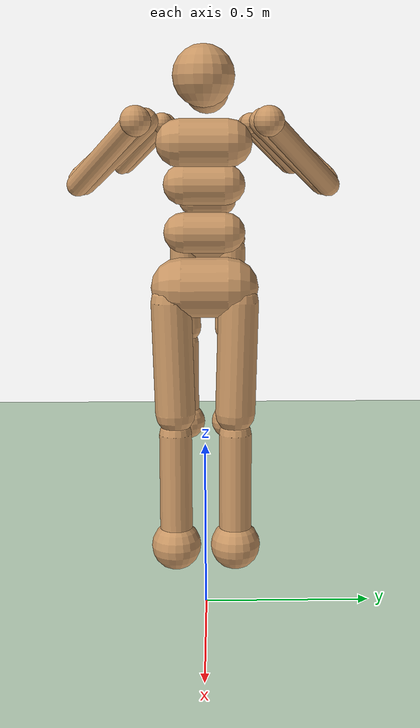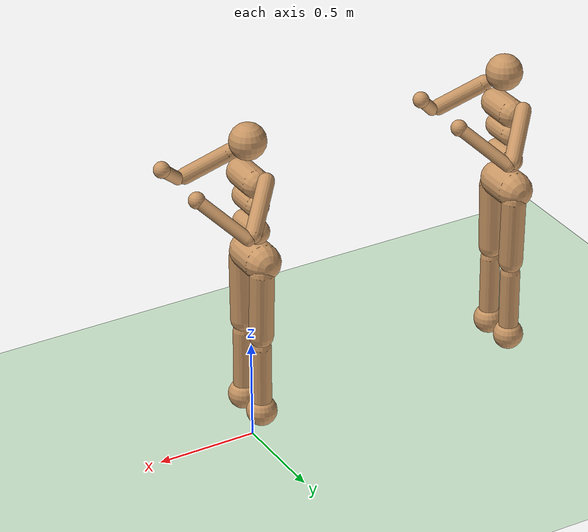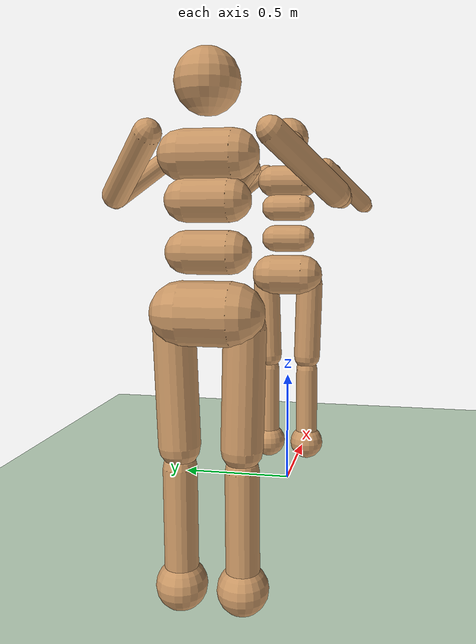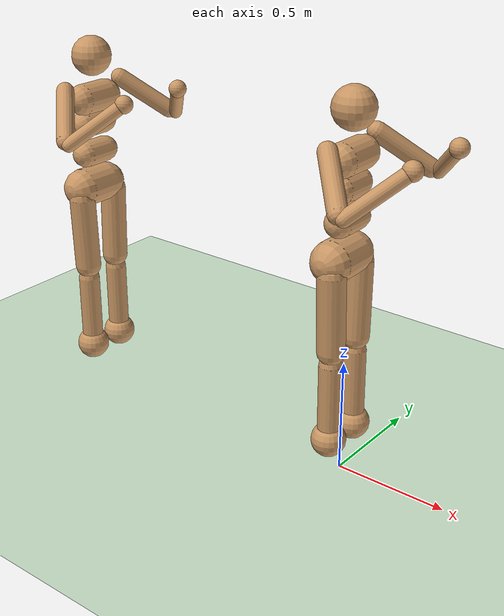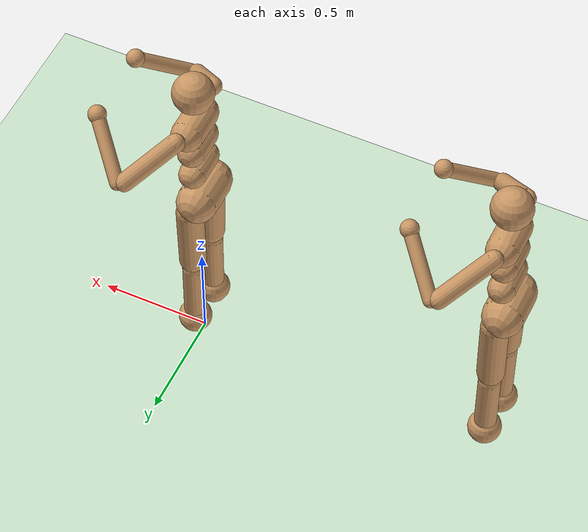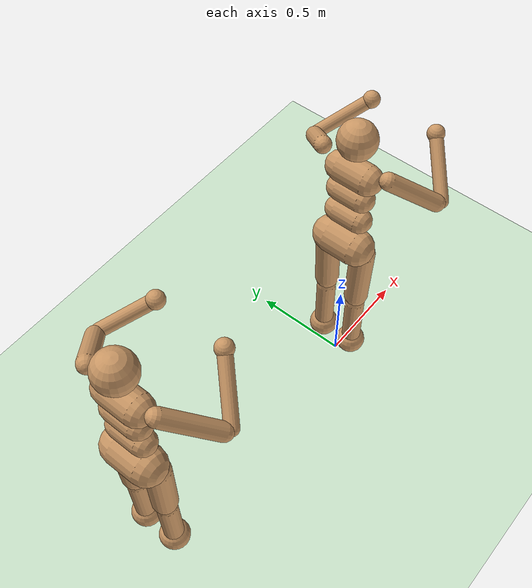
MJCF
<mujoco model="humanoid">
    <compiler angle="degree" inertiafromgeom="true"/>
    <default>
        <joint armature="1" damping="1" limited="true"/>
        <geom conaffinity="1" condim="1" contype="1" margin="0.001" material="geom" rgba="0.8 0.6 .4 1"/>
        <motor ctrllimited="true" ctrlrange="-.4 .4"/>
    </default>
    <option integrator="RK4" iterations="50" solver="PGS" timestep="0.003">
    </option>
    <size nkey="5" nuser_geom="1"/>
    <visual>
        <map fogend="5" fogstart="3"/>
    </visual>
    <asset>
        <texture builtin="gradient" height="100" rgb1=".4 .5 .6" rgb2="0 0 0" type="skybox" width="100"/>
        <texture builtin="flat" height="1278" mark="cross" markrgb="1 1 1" name="texgeom" random="0.01" rgb1="0.8 0.6 0.4" rgb2="0.8 0.6 0.4" type="cube" width="127"/>
        <texture builtin="checker" height="100" name="texplane" rgb1="0 0 0" rgb2="0.8 0.8 0.8" type="2d" width="100"/>
        <material name="MatPlane" reflectance="0.5" shininess="1" specular="1" texrepeat="60 60" texture="texplane"/>
        <material name="geom" texture="texgeom" texuniform="true"/>
    </asset>
    <worldbody>
        <light cutoff="100" diffuse="1 1 1" dir="-0 0 -1.3" directional="true" exponent="1" pos="0 0 1.3" specular=".1 .1 .1"/>
        <geom condim="3" friction="1 .1 .1" material="MatPlane" name="floor" pos="0 0 0" rgba="0.8 0.9 0.8 1" size="20 20 0.125" type="plane"/>
        <body name="torso" pos="0 0 1.4">
            <camera name="track" mode="trackcom" pos="0 -4 0" xyaxes="1 0 0 0 0 1"/>
            <joint armature="0" damping="0" limited="false" name="root" pos="0 0 0" stiffness="0" type="free"/>
            <geom fromto="0 -.07 0 0 .07 0" name="torso1" size="0.07" type="capsule"/>
            <geom name="head" pos="0 0 .19" size=".09" type="sphere" user="258"/>
            <geom fromto="-.01 -.06 -.12 -.01 .06 -.12" name="uwaist" size="0.06" type="capsule"/>
            <body name="lwaist" pos="-.01 0 -0.260" quat="1.000 0 -0.002 0">
                <geom fromto="0 -.06 0 0 .06 0" name="lwaist" size="0.06" type="capsule"/>
                <joint armature="0.02" axis="0 0 1" damping="5" name="abdomen_z" pos="0 0 0.065" range="-45 45" stiffness="20" type="hinge"/>
                <joint armature="0.02" axis="0 1 0" damping="5" name="abdomen_y" pos="0 0 0.065" range="-75 30" stiffness="10" type="hinge"/>
                <body name="pelvis" pos="0 0 -0.165" quat="1.000 0 -0.002 0">
                    <joint armature="0.02" axis="1 0 0" damping="5" name="abdomen_x" pos="0 0 0.1" range="-35 35" stiffness="10" type="hinge"/>
                    <geom fromto="-.02 -.07 0 -.02 .07 0" name="butt" size="0.09" type="capsule"/>
                    <body name="right_thigh" pos="0 -0.1 -0.04">
                        <joint armature="0.01" axis="1 0 0" damping="5" name="right_hip_x" pos="0 0 0" range="-25 5" stiffness="10" type="hinge"/>
                        <joint armature="0.01" axis="0 0 1" damping="5" name="right_hip_z" pos="0 0 0" range="-60 35" stiffness="10" type="hinge"/>
                        <joint armature="0.0080" axis="0 1 0" damping="5" name="right_hip_y" pos="0 0 0" range="-110 20" stiffness="20" type="hinge"/>
                        <geom fromto="0 0 0 0 0.01 -.34" name="right_thigh1" size="0.06" type="capsule"/>
                        <body name="right_shin" pos="0 0.01 -0.403">
                            <joint armature="0.0060" axis="0 -1 0" name="right_knee" pos="0 0 .02" range="-160 -2" type="hinge"/>
                            <geom fromto="0 0 0 0 0 -.3" name="right_shin1" size="0.049" type="capsule"/>
                            <body name="right_foot" pos="0 0 -0.45">
                                <geom name="right_foot" pos="0 0 0.1" size="0.075" type="sphere" user="0"/>
                            </body>
                        </body>
                    </body>
                    <body name="left_thigh" pos="0 0.1 -0.04">
                        <joint armature="0.01" axis="-1 0 0" damping="5" name="left_hip_x" pos="0 0 0" range="-25 5" stiffness="10" type="hinge"/>
                        <joint armature="0.01" axis="0 0 -1" damping="5" name="left_hip_z" pos="0 0 0" range="-60 35" stiffness="10" type="hinge"/>
                        <joint armature="0.01" axis="0 1 0" damping="5" name="left_hip_y" pos="0 0 0" range="-110 20" stiffness="20" type="hinge"/>
                        <geom fromto="0 0 0 0 -0.01 -.34" name="left_thigh1" size="0.06" type="capsule"/>
                        <body name="left_shin" pos="0 -0.01 -0.403">
                            <joint armature="0.0060" axis="0 -1 0" name="left_knee" pos="0 0 .02" range="-160 -2" stiffness="1" type="hinge"/>
                            <geom fromto="0 0 0 0 0 -.3" name="left_shin1" size="0.049" type="capsule"/>
                            <body name="left_foot" pos="0 0 -0.45">
                                <geom name="left_foot" type="sphere" size="0.075" pos="0 0 0.1" user="0" />
                            </body>
                        </body>
                    </body>
                </body>
            </body>
            <body name="right_upper_arm" pos="0 -0.17 0.06">
                <joint armature="0.0068" axis="2 1 1" name="right_shoulder1" pos="0 0 0" range="-85 60" stiffness="1" type="hinge"/>
                <joint armature="0.0051" axis="0 -1 1" name="right_shoulder2" pos="0 0 0" range="-85 60" stiffness="1" type="hinge"/>
                <geom fromto="0 0 0 .16 -.16 -.16" name="right_uarm1" size="0.04 0.16" type="capsule"/>
                <body name="right_lower_arm" pos=".18 -.18 -.18">
                    <joint armature="0.0028" axis="0 -1 1" name="right_elbow" pos="0 0 0" range="-90 50" stiffness="0" type="hinge"/>
                    <geom fromto="0.01 0.01 0.01 .17 .17 .17" name="right_larm" size="0.031" type="capsule"/>
                    <geom name="right_hand" pos=".18 .18 .18" size="0.04" type="sphere"/>
                    <camera pos="0 0 0"/>
                </body>
            </body>
            <body name="left_upper_arm" pos="0 0.17 0.06">
                <joint armature="0.0068" axis="2 -1 1" name="left_shoulder1" pos="0 0 0" range="-60 85" stiffness="1" type="hinge"/>
                <joint armature="0.0051" axis="0 1 1" name="left_shoulder2" pos="0 0 0" range="-60 85" stiffness="1" type="hinge"/>
                <geom fromto="0 0 0 .16 .16 -.16" name="left_uarm1" size="0.04 0.16" type="capsule"/>
                <body name="left_lower_arm" pos=".18 .18 -.18">
                    <joint armature="0.0028" axis="0 -1 -1" name="left_elbow" pos="0 0 0" range="-90 50" stiffness="0" type="hinge"/>
                    <geom fromto="0.01 -0.01 0.01 .17 -.17 .17" name="left_larm" size="0.031" type="capsule"/>
                    <geom name="left_hand" pos=".18 -.18 .18" size="0.04" type="sphere"/>
                </body>
            </body>
        </body>

        <body name="torso_goal" pos="-1.4 0 1.4">
            <camera name="track_goal" mode="trackcom" pos="0 -4 0" xyaxes="1 0 0 0 0 1"/>
            <joint armature="0" damping="0" limited="false" name="root_goal" pos="0 0 0" stiffness="0" type="free"/>
            <geom conaffinity="0" contype="0" fromto="0 -.07 0 0 .07 0" name="torso1_goal" size="0.07" type="capsule"/>
            <geom conaffinity="0" contype="0" name="head_goal" pos="0 0 .19" size=".09" type="sphere" user="258"/>
            <geom conaffinity="0" contype="0" fromto="-.01 -.06 -.12 -.01 .06 -.12" name="uwaist_goal" size="0.06" type="capsule"/>
            <body name="lwaist_goal" pos="-.01 0 -0.260" quat="1.000 0 -0.002 0">
                <geom conaffinity="0" contype="0" fromto="0 -.06 0 0 .06 0" name="lwaist_goal" size="0.06" type="capsule"/>
                <joint armature="0.02" axis="0 0 1" damping="5" name="abdomen_z_goal" pos="0 0 0.065" range="-45 45" stiffness="20" type="hinge"/>
                <joint armature="0.02" axis="0 1 0" damping="5" name="abdomen_y_goal" pos="0 0 0.065" range="-75 30" stiffness="10" type="hinge"/>
                <body name="pelvis_goal" pos="0 0 -0.165" quat="1.000 0 -0.002 0">
                    <joint armature="0.02" axis="1 0 0" damping="5" name="abdomen_x_goal" pos="0 0 0.1" range="-35 35" stiffness="10" type="hinge"/>
                    <geom conaffinity="0" contype="0" fromto="-.02 -.07 0 -.02 .07 0" name="butt_goal" size="0.09" type="capsule"/>
                    <body name="right_thigh_goal" pos="0 -0.1 -0.04">
                        <joint armature="0.01" axis="1 0 0" damping="5" name="right_hip_x_goal" pos="0 0 0" range="-25 5" stiffness="10" type="hinge"/>
                        <joint armature="0.01" axis="0 0 1" damping="5" name="right_hip_z_goal" pos="0 0 0" range="-60 35" stiffness="10" type="hinge"/>
                        <joint armature="0.0080" axis="0 1 0" damping="5" name="right_hip_y_goal" pos="0 0 0" range="-110 20" stiffness="20" type="hinge"/>
                        <geom conaffinity="0" contype="0" fromto="0 0 0 0 0.01 -.34" name="right_thigh1_goal" size="0.06" type="capsule"/>
                        <body name="right_shin_goal" pos="0 0.01 -0.403">
                            <joint armature="0.0060" axis="0 -1 0" name="right_knee_goal" pos="0 0 .02" range="-160 -2" type="hinge"/>
                            <geom conaffinity="0" contype="0" fromto="0 0 0 0 0 -.3" name="right_shin1_goal" size="0.049" type="capsule"/>
                            <body name="right_foot_goal" pos="0 0 -0.45">
                                <geom conaffinity="0" contype="0" name="right_foot_goal" pos="0 0 0.1" size="0.075" type="sphere" user="0"/>
                            </body>
                        </body>
                    </body>
                    <body name="left_thigh_goal" pos="0 0.1 -0.04">
                        <joint armature="0.01" axis="-1 0 0" damping="5" name="left_hip_x_goal" pos="0 0 0" range="-25 5" stiffness="10" type="hinge"/>
                        <joint armature="0.01" axis="0 0 -1" damping="5" name="left_hip_z_goal" pos="0 0 0" range="-60 35" stiffness="10" type="hinge"/>
                        <joint armature="0.01" axis="0 1 0" damping="5" name="left_hip_y_goal" pos="0 0 0" range="-110 20" stiffness="20" type="hinge"/>
                        <geom conaffinity="0" contype="0" fromto="0 0 0 0 -0.01 -.34" name="left_thigh1_goal" size="0.06" type="capsule"/>
                        <body name="left_shin_goal" pos="0 -0.01 -0.403">
                            <joint armature="0.0060" axis="0 -1 0" name="left_knee_goal" pos="0 0 .02" range="-160 -2" stiffness="1" type="hinge"/>
                            <geom conaffinity="0" contype="0" fromto="0 0 0 0 0 -.3" name="left_shin1_goal" size="0.049" type="capsule"/>
                            <body name="left_foot_goal" pos="0 0 -0.45">
                                <geom conaffinity="0" contype="0" name="left_foot_goal" type="sphere" size="0.075" pos="0 0 0.1" user="0" />
                            </body>
                        </body>
                    </body>
                </body>
            </body>
            <body name="right_upper_arm_goal" pos="0 -0.17 0.06">
                <joint armature="0.0068" axis="2 1 1" name="right_shoulder1_goal" pos="0 0 0" range="-85 60" stiffness="1" type="hinge"/>
                <joint armature="0.0051" axis="0 -1 1" name="right_shoulder2_goal" pos="0 0 0" range="-85 60" stiffness="1" type="hinge"/>
                <geom conaffinity="0" contype="0" fromto="0 0 0 .16 -.16 -.16" name="right_uarm1_goal" size="0.04 0.16" type="capsule"/>
                <body name="right_lower_arm_goal" pos=".18 -.18 -.18">
                    <joint armature="0.0028" axis="0 -1 1" name="right_elbow_goal" pos="0 0 0" range="-90 50" stiffness="0" type="hinge"/>
                    <geom conaffinity="0" contype="0" fromto="0.01 0.01 0.01 .17 .17 .17" name="right_larm_goal" size="0.031" type="capsule"/>
                    <geom conaffinity="0" contype="0" name="right_hand_goal" pos=".18 .18 .18" size="0.04" type="sphere"/>
                    <camera pos="0 0 0"/>
                </body>
            </body>
            <body name="left_upper_arm_goal" pos="0 0.17 0.06">
                <joint armature="0.0068" axis="2 -1 1" name="left_shoulder1_goal" pos="0 0 0" range="-60 85" stiffness="1" type="hinge"/>
                <joint armature="0.0051" axis="0 1 1" name="left_shoulder2_goal" pos="0 0 0" range="-60 85" stiffness="1" type="hinge"/>
                <geom conaffinity="0" contype="0" fromto="0 0 0 .16 .16 -.16" name="left_uarm1_goal" size="0.04 0.16" type="capsule"/>
                <body name="left_lower_arm_goal" pos=".18 .18 -.18">
                    <joint armature="0.0028" axis="0 -1 -1" name="left_elbow_goal" pos="0 0 0" range="-90 50" stiffness="0" type="hinge"/>
                    <geom conaffinity="0" contype="0" fromto="0.01 -0.01 0.01 .17 -.17 .17" name="left_larm_goal" size="0.031" type="capsule"/>
                    <geom conaffinity="0" contype="0" name="left_hand_goal" pos=".18 -.18 .18" size="0.04" type="sphere"/>
                </body>
            </body>
        </body>
    </worldbody>
    <tendon>
        <fixed name="left_hipknee">
            <joint coef="-1" joint="left_hip_y"/>
            <joint coef="1" joint="left_knee"/>
        </fixed>
        <fixed name="right_hipknee">
            <joint coef="-1" joint="right_hip_y"/>
            <joint coef="1" joint="right_knee"/>
        </fixed>
        <fixed name="left_hipknee_goal">
            <joint coef="-1" joint="left_hip_y_goal"/>
            <joint coef="1" joint="left_knee_goal"/>
        </fixed>
        <fixed name="right_hipknee_goal">
            <joint coef="-1" joint="right_hip_y_goal"/>
            <joint coef="1" joint="right_knee_goal"/>
        </fixed>
    </tendon>

    <actuator>
        <motor gear="100" joint="abdomen_y" name="abdomen_y"/>
        <motor gear="100" joint="abdomen_z" name="abdomen_z"/>
        <motor gear="100" joint="abdomen_x" name="abdomen_x"/>
        <motor gear="100" joint="right_hip_x" name="right_hip_x"/>
        <motor gear="100" joint="right_hip_z" name="right_hip_z"/>
        <motor gear="300" joint="right_hip_y" name="right_hip_y"/>
        <motor gear="200" joint="right_knee" name="right_knee"/>
        <motor gear="100" joint="left_hip_x" name="left_hip_x"/>
        <motor gear="100" joint="left_hip_z" name="left_hip_z"/>
        <motor gear="300" joint="left_hip_y" name="left_hip_y"/>
        <motor gear="200" joint="left_knee" name="left_knee"/>
        <motor gear="25" joint="right_shoulder1" name="right_shoulder1"/>
        <motor gear="25" joint="right_shoulder2" name="right_shoulder2"/>
        <motor gear="25" joint="right_elbow" name="right_elbow"/>
        <motor gear="25" joint="left_shoulder1" name="left_shoulder1"/>
        <motor gear="25" joint="left_shoulder2" name="left_shoulder2"/>
        <motor gear="25" joint="left_elbow" name="left_elbow"/>
    </actuator>
</mujoco>
